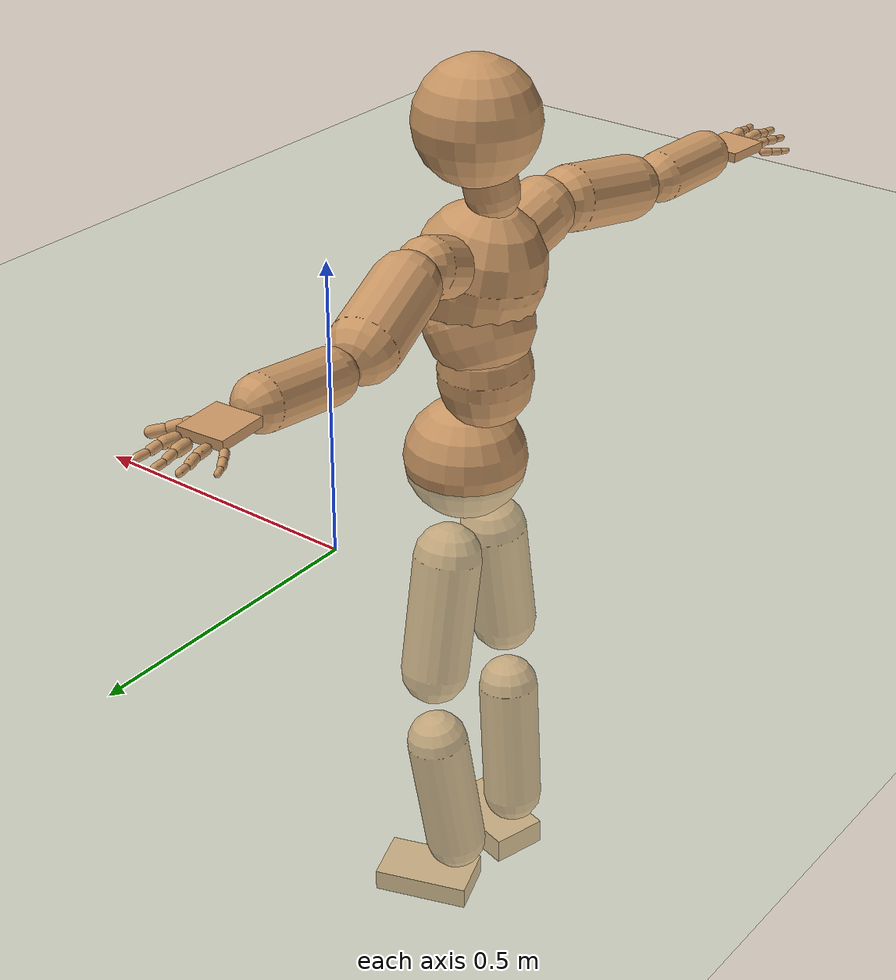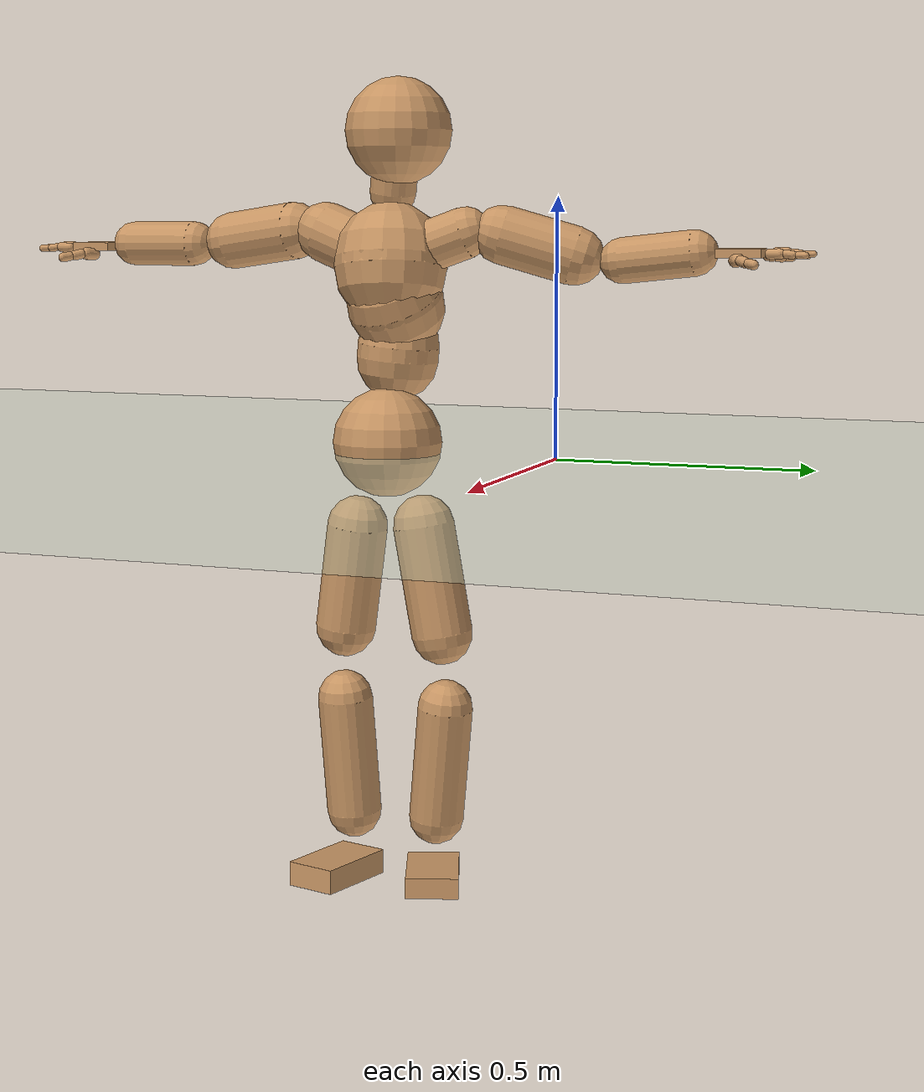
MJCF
<mujoco model="humanoid">
  <compiler coordinate="local" angle="radian"/>
  <default>
    <joint damping="0.0" armature="0.01" stiffness="0.0" limited="true"/>
    <geom conaffinity="1" condim="3" contype="7" margin="0.001" rgba="0.8 0.6 .4 1"/>
  </default>
  <asset>
    <texture type="skybox" builtin="gradient" rgb1=".4 .5 .6" rgb2="0 0 0" width="100" height="100"/>
    <texture builtin="flat" height="1278" mark="cross" markrgb="1 1 1" name="texgeom" random="0.01" rgb1="0.8 0.6 0.4" rgb2="0.8 0.6 0.4" type="cube" width="127"/>
    <texture builtin="checker" height="100" name="texplane" rgb1="0 0 0" rgb2="0.8 0.8 0.8" type="2d" width="100"/>
    <material name="MatPlane" reflectance="0.5" shininess="1" specular="1" texrepeat="60 60" texture="texplane"/>
    <material name="geom" texture="texgeom" texuniform="true"/>
  </asset>
  <worldbody>
    <light cutoff="100" diffuse="1 1 1" dir="-0 0 -1.3" directional="true" exponent="1" pos="0 0 1.3" specular=".1 .1 .1"/>
    <geom conaffinity="1" condim="3" name="floor" pos="0 0 0" rgba="0.8 0.9 0.8 1" size="100 100 .2" type="plane" material="MatPlane"/>
    <body name="Pelvis" pos="0.0016 -0.348 0.0195">
      <freejoint name="Pelvis"/>
      <geom type="sphere" contype="1" conaffinity="1" density="500" size="0.1084" pos="0.0000 0.0000 0.0000" name="Pelvis"/>
      <body name="L_Hip" pos="-0.0154 0.0574 -0.0916">
        <joint name="L_Hip_x" type="hinge" pos="0 0 0" axis="1 0 0" stiffness="800" damping="80" armature="0.02" range="-180.0000 180.0000"/>
        <joint name="L_Hip_y" type="hinge" pos="0 0 0" axis="0 1 0" stiffness="800" damping="80" armature="0.02" range="-180.0000 180.0000"/>
        <joint name="L_Hip_z" type="hinge" pos="0 0 0" axis="0 0 1" stiffness="800" damping="80" armature="0.02" range="-180.0000 180.0000"/>
        <geom type="capsule" contype="1" conaffinity="1" density="500" fromto="-0.0005 0.0129 -0.0727 -0.0020 0.0518 -0.2906" size="0.0608" name="L_Hip"/>
        <body name="L_Knee" pos="-0.0025 0.0647 -0.3633">
          <joint name="L_Knee_x" type="hinge" pos="0 0 0" axis="1 0 0" stiffness="800" damping="80" armature="0.02" range="-180.0000 180.0000"/>
          <joint name="L_Knee_y" type="hinge" pos="0 0 0" axis="0 1 0" stiffness="800" damping="80" armature="0.02" range="-180.0000 180.0000"/>
          <joint name="L_Knee_z" type="hinge" pos="0 0 0" axis="0 0 1" stiffness="800" damping="80" armature="0.02" range="-180.0000 180.0000"/>
          <geom type="capsule" contype="1" conaffinity="1" density="500" fromto="-0.0076 -0.0091 -0.0780 -0.0303 -0.0365 -0.3121" size="0.0554" name="L_Knee"/>
          <body name="L_Ankle" pos="-0.0378 -0.0457 -0.3902">
            <joint name="L_Ankle_x" type="hinge" pos="0 0 0" axis="1 0 0" stiffness="800" damping="80" armature="0.02" range="-180.0000 180.0000"/>
            <joint name="L_Ankle_y" type="hinge" pos="0 0 0" axis="0 1 0" stiffness="800" damping="80" armature="0.02" range="-180.0000 180.0000"/>
            <joint name="L_Ankle_z" type="hinge" pos="0 0 0" axis="0 0 1" stiffness="800" damping="80" armature="0.02" range="-180.0000 180.0000"/>
            <geom type="box" contype="1" conaffinity="1" density="500" pos="0.0630 0.0222 -0.0275" size="0.088 0.0524 0.0206" quat="0.9857 0.0000 0.0000 0.1688" name="L_Ankle"/>
            <body name="L_Toe" pos="0.126 0.0445 -0.055">
              <joint name="L_Toe_x" type="hinge" pos="0 0 0" axis="1 0 0" stiffness="500" damping="50" armature="0.02" range="-180.0000 180.0000"/>
              <joint name="L_Toe_y" type="hinge" pos="0 0 0" axis="0 1 0" stiffness="500" damping="50" armature="0.02" range="-180.0000 180.0000"/>
              <joint name="L_Toe_z" type="hinge" pos="0 0 0" axis="0 0 1" stiffness="500" damping="50" armature="0.02" range="-180.0000 180.0000"/>
              <geom type="box" contype="1" conaffinity="1" density="500" pos="0.0000 0.0000 0.0288" size="0.001 0.0025 0.0011" quat="0.9849 0.0000 0.0000 0.1732" name="L_Toe"/>
            </body>
          </body>
        </body>
      </body>
      <body name="R_Hip" pos="-0.0082 -0.0594 -0.1028">
        <joint name="R_Hip_x" type="hinge" pos="0 0 0" axis="1 0 0" stiffness="800" damping="80" armature="0.02" range="-180.0000 180.0000"/>
        <joint name="R_Hip_y" type="hinge" pos="0 0 0" axis="0 1 0" stiffness="800" damping="80" armature="0.02" range="-180.0000 180.0000"/>
        <joint name="R_Hip_z" type="hinge" pos="0 0 0" axis="0 0 1" stiffness="800" damping="80" armature="0.02" range="-180.0000 180.0000"/>
        <geom type="capsule" contype="1" conaffinity="1" density="500" fromto="-0.0022 -0.0097 -0.0694 -0.0087 -0.0387 -0.2775" size="0.0607" name="R_Hip"/>
        <body name="R_Knee" pos="-0.0108 -0.0483 -0.3468">
          <joint name="R_Knee_x" type="hinge" pos="0 0 0" axis="1 0 0" stiffness="800" damping="80" armature="0.02" range="-180.0000 180.0000"/>
          <joint name="R_Knee_y" type="hinge" pos="0 0 0" axis="0 1 0" stiffness="800" damping="80" armature="0.02" range="-180.0000 180.0000"/>
          <joint name="R_Knee_z" type="hinge" pos="0 0 0" axis="0 0 1" stiffness="800" damping="80" armature="0.02" range="-180.0000 180.0000"/>
          <geom type="capsule" contype="1" conaffinity="1" density="500" fromto="-0.0074 0.0033 -0.0805 -0.0296 0.0130 -0.3218" size="0.0554" name="R_Knee"/>
          <body name="R_Ankle" pos="-0.037 0.0163 -0.4023">
            <joint name="R_Ankle_x" type="hinge" pos="0 0 0" axis="1 0 0" stiffness="800" damping="80" armature="0.02" range="-180.0000 180.0000"/>
            <joint name="R_Ankle_y" type="hinge" pos="0 0 0" axis="0 1 0" stiffness="800" damping="80" armature="0.02" range="-180.0000 180.0000"/>
            <joint name="R_Ankle_z" type="hinge" pos="0 0 0" axis="0 0 1" stiffness="800" damping="80" armature="0.02" range="-180.0000 180.0000"/>
            <geom type="box" contype="1" conaffinity="1" density="500" pos="0.0665 -0.0177 -0.0270" size="0.088 0.0524 0.0245" quat="0.9915 0.0000 0.0000 -0.1299" name="R_Ankle"/>
            <body name="R_Toe" pos="0.133 -0.0354 -0.054">
              <joint name="R_Toe_x" type="hinge" pos="0 0 0" axis="1 0 0" stiffness="500" damping="50" armature="0.02" range="-180.0000 180.0000"/>
              <joint name="R_Toe_y" type="hinge" pos="0 0 0" axis="0 1 0" stiffness="500" damping="50" armature="0.02" range="-180.0000 180.0000"/>
              <joint name="R_Toe_z" type="hinge" pos="0 0 0" axis="0 0 1" stiffness="500" damping="50" armature="0.02" range="-180.0000 180.0000"/>
              <geom type="box" contype="1" conaffinity="1" density="500" pos="0.0000 0.0000 0.0243" size="0.001 0.0025 0.0011" quat="0.9926 0.0000 0.0000 -0.1211" name="R_Toe"/>
            </body>
          </body>
        </body>
      </body>
      <body name="Torso" pos="-0.0443 -0.0013 0.1054">
        <joint name="Torso_x" type="hinge" pos="0 0 0" axis="1 0 0" stiffness="1000" damping="100" armature="0.02" range="-180.0000 180.0000"/>
        <joint name="Torso_y" type="hinge" pos="0 0 0" axis="0 1 0" stiffness="1000" damping="100" armature="0.02" range="-180.0000 180.0000"/>
        <joint name="Torso_z" type="hinge" pos="0 0 0" axis="0 0 1" stiffness="1000" damping="100" armature="0.02" range="-180.0000 180.0000"/>
        <geom type="capsule" contype="1" conaffinity="1" density="500" fromto="0.0003 0.0080 0.0837 0.0002 0.0053 0.0558" size="0.0814" name="Torso"/>
        <body name="Spine" pos="0.0004 0.0133 0.1395">
          <joint name="Spine_x" type="hinge" pos="0 0 0" axis="1 0 0" stiffness="1000" damping="100" armature="0.02" range="-180.0000 180.0000"/>
          <joint name="Spine_y" type="hinge" pos="0 0 0" axis="0 1 0" stiffness="1000" damping="100" armature="0.02" range="-180.0000 180.0000"/>
          <joint name="Spine_z" type="hinge" pos="0 0 0" axis="0 0 1" stiffness="1000" damping="100" armature="0.02" range="-180.0000 180.0000"/>
          <geom type="capsule" contype="1" conaffinity="1" density="500" fromto="0.0175 -0.0064 0.0328 0.0117 -0.0043 0.0219" size="0.0963" name="Spine"/>
          <body name="Chest" pos="0.0292 -0.0107 0.0547">
            <joint name="Chest_x" type="hinge" pos="0 0 0" axis="1 0 0" stiffness="1000" damping="100" armature="0.02" range="-180.0000 180.0000"/>
            <joint name="Chest_y" type="hinge" pos="0 0 0" axis="0 1 0" stiffness="1000" damping="100" armature="0.02" range="-180.0000 180.0000"/>
            <joint name="Chest_z" type="hinge" pos="0 0 0" axis="0 0 1" stiffness="1000" damping="100" armature="0.02" range="-180.0000 180.0000"/>
            <geom type="capsule" contype="1" conaffinity="1" density="500" fromto="-0.0111 -0.0038 0.0610 -0.0074 -0.0026 0.0406" size="0.1119" name="Chest"/>
            <body name="Neck" pos="-0.0354 -0.0117 0.159">
              <joint name="Neck_x" type="hinge" pos="0 0 0" axis="1 0 0" stiffness="500" damping="50" armature="0.02" range="-180.0000 180.0000"/>
              <joint name="Neck_y" type="hinge" pos="0 0 0" axis="0 1 0" stiffness="500" damping="50" armature="0.02" range="-180.0000 180.0000"/>
              <joint name="Neck_z" type="hinge" pos="0 0 0" axis="0 0 1" stiffness="500" damping="50" armature="0.02" range="-180.0000 180.0000"/>
              <geom type="capsule" contype="1" conaffinity="1" density="500" fromto="0.0045 0.0048 0.0301 0.0181 0.0192 0.1202" size="0.0456" name="Neck"/>
              <body name="Head" pos="0.0226 0.024 0.1503">
                <joint name="Head_x" type="hinge" pos="0 0 0" axis="1 0 0" stiffness="500" damping="50" armature="0.02" range="-180.0000 180.0000"/>
                <joint name="Head_y" type="hinge" pos="0 0 0" axis="0 1 0" stiffness="500" damping="50" armature="0.02" range="-180.0000 180.0000"/>
                <joint name="Head_z" type="hinge" pos="0 0 0" axis="0 0 1" stiffness="500" damping="50" armature="0.02" range="-180.0000 180.0000"/>
                <geom type="sphere" contype="1" conaffinity="1" density="500" size="0.1050" pos="0.0000 0.0000 0.0000" name="Head"/>
              </body>
            </body>
            <body name="L_Thorax" pos="-0.0089 0.0411 0.0724">
              <joint name="L_Thorax_x" type="hinge" pos="0 0 0" axis="1 0 0" stiffness="500" damping="50" armature="0.02" range="-180.0000 180.0000"/>
              <joint name="L_Thorax_y" type="hinge" pos="0 0 0" axis="0 1 0" stiffness="500" damping="50" armature="0.02" range="-180.0000 180.0000"/>
              <joint name="L_Thorax_z" type="hinge" pos="0 0 0" axis="0 0 1" stiffness="500" damping="50" armature="0.02" range="-180.0000 180.0000"/>
              <geom type="capsule" contype="1" conaffinity="1" density="500" fromto="-0.0030 0.0268 0.0099 -0.0120 0.1074 0.0395" size="0.051" name="L_Thorax"/>
              <body name="L_Shoulder" pos="-0.015 0.1342 0.0494">
                <joint name="L_Shoulder_x" type="hinge" pos="0 0 0" axis="1 0 0" stiffness="500" damping="50" armature="0.02" range="-180.0000 180.0000"/>
                <joint name="L_Shoulder_y" type="hinge" pos="0 0 0" axis="0 1 0" stiffness="500" damping="50" armature="0.02" range="-180.0000 180.0000"/>
                <joint name="L_Shoulder_z" type="hinge" pos="0 0 0" axis="0 0 1" stiffness="500" damping="50" armature="0.02" range="-180.0000 180.0000"/>
                <geom type="capsule" contype="1" conaffinity="1" density="500" fromto="-0.0103 0.0453 -0.0134 -0.0413 0.1812 -0.0537" size="0.0579" name="L_Shoulder"/>
                <body name="L_Elbow" pos="-0.0517 0.2264 -0.0672">
                  <joint name="L_Elbow_x" type="hinge" pos="0 0 0" axis="1 0 0" stiffness="500" damping="50" armature="0.02" range="-720.0000 720.0000"/>
                  <joint name="L_Elbow_y" type="hinge" pos="0 0 0" axis="0 1 0" stiffness="500" damping="50" armature="0.02" range="-720.0000 720.0000"/>
                  <joint name="L_Elbow_z" type="hinge" pos="0 0 0" axis="0 0 1" stiffness="500" damping="50" armature="0.02" range="-720.0000 720.0000"/>
                  <geom type="capsule" contype="1" conaffinity="1" density="500" fromto="0.0005 0.0475 0.0053 0.0019 0.1902 0.0211" size="0.0444" name="L_Elbow"/>
                  <body name="L_Wrist" pos="0.0024 0.2377 0.0263">
                    <joint name="L_Wrist_x" type="hinge" pos="0 0 0" axis="1 0 0" stiffness="300" damping="30" armature="0.02" range="-180.0000 180.0000"/>
                    <joint name="L_Wrist_y" type="hinge" pos="0 0 0" axis="0 1 0" stiffness="300" damping="30" armature="0.02" range="-180.0000 180.0000"/>
                    <joint name="L_Wrist_z" type="hinge" pos="0 0 0" axis="0 0 1" stiffness="300" damping="30" armature="0.02" range="-180.0000 180.0000"/>
                    <geom type="box" contype="1" conaffinity="1" density="500" pos="-0.0029 0.0396 -0.0048" size="0.0431 0.0403 0.0083" quat="0.7323 0.0000 0.0000 -0.6810" name="L_Wrist"/>
                    <body name="L_Index1" pos="0.022 0.094 -0.0062">
                      <joint name="L_Index1_x" type="hinge" pos="0 0 0" axis="1 0 0" stiffness="100" damping="10" armature="0.02" range="-180.0000 180.0000"/>
                      <joint name="L_Index1_y" type="hinge" pos="0 0 0" axis="0 1 0" stiffness="100" damping="10" armature="0.02" range="-180.0000 180.0000"/>
                      <joint name="L_Index1_z" type="hinge" pos="0 0 0" axis="0 0 1" stiffness="100" damping="10" armature="0.02" range="-180.0000 180.0000"/>
                      <geom type="capsule" contype="1" conaffinity="1" density="500" fromto="0.0008 0.0063 0.0004 0.0031 0.0253 0.0015" size="0.01" name="L_Index1"/>
                      <body name="L_Index2" pos="0.0039 0.0316 0.0019">
                        <joint name="L_Index2_x" type="hinge" pos="0 0 0" axis="1 0 0" stiffness="100" damping="10" armature="0.02" range="-180.0000 180.0000"/>
                        <joint name="L_Index2_y" type="hinge" pos="0 0 0" axis="0 1 0" stiffness="100" damping="10" armature="0.02" range="-180.0000 180.0000"/>
                        <joint name="L_Index2_z" type="hinge" pos="0 0 0" axis="0 0 1" stiffness="100" damping="10" armature="0.02" range="-180.0000 180.0000"/>
                        <geom type="capsule" contype="1" conaffinity="1" density="500" fromto="-0.0001 0.0044 -0.0005 -0.0002 0.0177 -0.0021" size="0.0079" name="L_Index2"/>
                        <body name="L_Index3" pos="-0.0003 0.0222 -0.0026">
                          <joint name="L_Index3_x" type="hinge" pos="0 0 0" axis="1 0 0" stiffness="100" damping="10" armature="0.02" range="-180.0000 180.0000"/>
                          <joint name="L_Index3_y" type="hinge" pos="0 0 0" axis="0 1 0" stiffness="100" damping="10" armature="0.02" range="-180.0000 180.0000"/>
                          <joint name="L_Index3_z" type="hinge" pos="0 0 0" axis="0 0 1" stiffness="100" damping="10" armature="0.02" range="-180.0000 180.0000"/>
                          <geom type="capsule" contype="1" conaffinity="1" density="500" fromto="0.0003 0.0048 -0.0001 0.0014 0.0193 -0.0005" size="0.0067" name="L_Index3"/>
                        </body>
                      </body>
                    </body>
                    <body name="L_Middle1" pos="-0.0034 0.1016 -0.0034">
                      <joint name="L_Middle1_x" type="hinge" pos="0 0 0" axis="1 0 0" stiffness="100" damping="10" armature="0.02" range="-180.0000 180.0000"/>
                      <joint name="L_Middle1_y" type="hinge" pos="0 0 0" axis="0 1 0" stiffness="100" damping="10" armature="0.02" range="-180.0000 180.0000"/>
                      <joint name="L_Middle1_z" type="hinge" pos="0 0 0" axis="0 0 1" stiffness="100" damping="10" armature="0.02" range="-180.0000 180.0000"/>
                      <geom type="capsule" contype="1" conaffinity="1" density="500" fromto="-0.0009 0.0061 0.0001 -0.0035 0.0242 0.0005" size="0.0101" name="L_Middle1"/>
                      <body name="L_Middle2" pos="-0.0043 0.0303 0.0007">
                        <joint name="L_Middle2_x" type="hinge" pos="0 0 0" axis="1 0 0" stiffness="100" damping="10" armature="0.02" range="-180.0000 180.0000"/>
                        <joint name="L_Middle2_y" type="hinge" pos="0 0 0" axis="0 1 0" stiffness="100" damping="10" armature="0.02" range="-180.0000 180.0000"/>
                        <joint name="L_Middle2_z" type="hinge" pos="0 0 0" axis="0 0 1" stiffness="100" damping="10" armature="0.02" range="-180.0000 180.0000"/>
                        <geom type="capsule" contype="1" conaffinity="1" density="500" fromto="-0.0009 0.0046 -0.0005 -0.0035 0.0184 -0.0020" size="0.0073" name="L_Middle2"/>
                        <body name="L_Middle3" pos="-0.0044 0.023 -0.0025">
                          <joint name="L_Middle3_x" type="hinge" pos="0 0 0" axis="1 0 0" stiffness="100" damping="10" armature="0.02" range="-180.0000 180.0000"/>
                          <joint name="L_Middle3_y" type="hinge" pos="0 0 0" axis="0 1 0" stiffness="100" damping="10" armature="0.02" range="-180.0000 180.0000"/>
                          <joint name="L_Middle3_z" type="hinge" pos="0 0 0" axis="0 0 1" stiffness="100" damping="10" armature="0.02" range="-180.0000 180.0000"/>
                          <geom type="capsule" contype="1" conaffinity="1" density="500" fromto="-0.0005 0.0050 -0.0001 -0.0019 0.0200 -0.0004" size="0.0063" name="L_Middle3"/>
                        </body>
                      </body>
                    </body>
                    <body name="L_Pinky1" pos="-0.0467 0.0767 -0.0129">
                      <joint name="L_Pinky1_x" type="hinge" pos="0 0 0" axis="1 0 0" stiffness="100" damping="10" armature="0.02" range="-180.0000 180.0000"/>
                      <joint name="L_Pinky1_y" type="hinge" pos="0 0 0" axis="0 1 0" stiffness="100" damping="10" armature="0.02" range="-180.0000 180.0000"/>
                      <joint name="L_Pinky1_z" type="hinge" pos="0 0 0" axis="0 0 1" stiffness="100" damping="10" armature="0.02" range="-180.0000 180.0000"/>
                      <geom type="capsule" contype="1" conaffinity="1" density="500" fromto="-0.0024 0.0032 -0.0003 -0.0097 0.0130 -0.0013" size="0.0071" name="L_Pinky1"/>
                      <body name="L_Pinky2" pos="-0.0121 0.0162 -0.0016">
                        <joint name="L_Pinky2_x" type="hinge" pos="0 0 0" axis="1 0 0" stiffness="100" damping="10" armature="0.02" range="-180.0000 180.0000"/>
                        <joint name="L_Pinky2_y" type="hinge" pos="0 0 0" axis="0 1 0" stiffness="100" damping="10" armature="0.02" range="-180.0000 180.0000"/>
                        <joint name="L_Pinky2_z" type="hinge" pos="0 0 0" axis="0 0 1" stiffness="100" damping="10" armature="0.02" range="-180.0000 180.0000"/>
                        <geom type="capsule" contype="1" conaffinity="1" density="500" fromto="-0.0022 0.0032 -0.0004 -0.0087 0.0128 -0.0016" size="0.0068" name="L_Pinky2"/>
                        <body name="L_Pinky3" pos="-0.0109 0.016 -0.002">
                          <joint name="L_Pinky3_x" type="hinge" pos="0 0 0" axis="1 0 0" stiffness="100" damping="10" armature="0.02" range="-180.0000 180.0000"/>
                          <joint name="L_Pinky3_y" type="hinge" pos="0 0 0" axis="0 1 0" stiffness="100" damping="10" armature="0.02" range="-180.0000 180.0000"/>
                          <joint name="L_Pinky3_z" type="hinge" pos="0 0 0" axis="0 0 1" stiffness="100" damping="10" armature="0.02" range="-180.0000 180.0000"/>
                          <geom type="capsule" contype="1" conaffinity="1" density="500" fromto="-0.0018 0.0036 -0.0000 -0.0071 0.0144 -0.0000" size="0.005" name="L_Pinky3"/>
                        </body>
                      </body>
                    </body>
                    <body name="L_Ring1" pos="-0.0289 0.0898 -0.0068">
                      <joint name="L_Ring1_x" type="hinge" pos="0 0 0" axis="1 0 0" stiffness="100" damping="10" armature="0.02" range="-180.0000 180.0000"/>
                      <joint name="L_Ring1_y" type="hinge" pos="0 0 0" axis="0 1 0" stiffness="100" damping="10" armature="0.02" range="-180.0000 180.0000"/>
                      <joint name="L_Ring1_z" type="hinge" pos="0 0 0" axis="0 0 1" stiffness="100" damping="10" armature="0.02" range="-180.0000 180.0000"/>
                      <geom type="capsule" contype="1" conaffinity="1" density="500" fromto="-0.0010 0.0056 0.0001 -0.0039 0.0224 0.0004" size="0.0085" name="L_Ring1"/>
                      <body name="L_Ring2" pos="-0.0049 0.0281 0.0005">
                        <joint name="L_Ring2_x" type="hinge" pos="0 0 0" axis="1 0 0" stiffness="100" damping="10" armature="0.02" range="-180.0000 180.0000"/>
                        <joint name="L_Ring2_y" type="hinge" pos="0 0 0" axis="0 1 0" stiffness="100" damping="10" armature="0.02" range="-180.0000 180.0000"/>
                        <joint name="L_Ring2_z" type="hinge" pos="0 0 0" axis="0 0 1" stiffness="100" damping="10" armature="0.02" range="-180.0000 180.0000"/>
                        <geom type="capsule" contype="1" conaffinity="1" density="500" fromto="-0.0013 0.0046 -0.0005 -0.0052 0.0182 -0.0021" size="0.0078" name="L_Ring2"/>
                        <body name="L_Ring3" pos="-0.0066 0.0228 -0.0026">
                          <joint name="L_Ring3_x" type="hinge" pos="0 0 0" axis="1 0 0" stiffness="100" damping="10" armature="0.02" range="-180.0000 180.0000"/>
                          <joint name="L_Ring3_y" type="hinge" pos="0 0 0" axis="0 1 0" stiffness="100" damping="10" armature="0.02" range="-180.0000 180.0000"/>
                          <joint name="L_Ring3_z" type="hinge" pos="0 0 0" axis="0 0 1" stiffness="100" damping="10" armature="0.02" range="-180.0000 180.0000"/>
                          <geom type="capsule" contype="1" conaffinity="1" density="500" fromto="-0.0009 0.0050 -0.0001 -0.0036 0.0198 -0.0005" size="0.0059" name="L_Ring3"/>
                        </body>
                      </body>
                    </body>
                    <body name="L_Thumb1" pos="0.0283 0.0342 -0.0187">
                      <joint name="L_Thumb1_x" type="hinge" pos="0 0 0" axis="1 0 0" stiffness="100" damping="10" armature="0.02" range="-180.0000 180.0000"/>
                      <joint name="L_Thumb1_y" type="hinge" pos="0 0 0" axis="0 1 0" stiffness="100" damping="10" armature="0.02" range="-180.0000 180.0000"/>
                      <joint name="L_Thumb1_z" type="hinge" pos="0 0 0" axis="0 0 1" stiffness="100" damping="10" armature="0.02" range="-180.0000 180.0000"/>
                      <geom type="capsule" contype="1" conaffinity="1" density="500" fromto="0.0054 0.0030 0.0005 0.0214 0.0118 0.0018" size="0.0126" name="L_Thumb1"/>
                      <body name="L_Thumb2" pos="0.0268 0.0148 0.0023">
                        <joint name="L_Thumb2_x" type="hinge" pos="0 0 0" axis="1 0 0" stiffness="100" damping="10" armature="0.02" range="-180.0000 180.0000"/>
                        <joint name="L_Thumb2_y" type="hinge" pos="0 0 0" axis="0 1 0" stiffness="100" damping="10" armature="0.02" range="-180.0000 180.0000"/>
                        <joint name="L_Thumb2_z" type="hinge" pos="0 0 0" axis="0 0 1" stiffness="100" damping="10" armature="0.02" range="-180.0000 180.0000"/>
                        <geom type="capsule" contype="1" conaffinity="1" density="500" fromto="0.0033 0.0037 -0.0010 0.0132 0.0148 -0.0041" size="0.0101" name="L_Thumb2"/>
                        <body name="L_Thumb3" pos="0.0166 0.0184 -0.0051">
                          <joint name="L_Thumb3_x" type="hinge" pos="0 0 0" axis="1 0 0" stiffness="100" damping="10" armature="0.02" range="-180.0000 180.0000"/>
                          <joint name="L_Thumb3_y" type="hinge" pos="0 0 0" axis="0 1 0" stiffness="100" damping="10" armature="0.02" range="-180.0000 180.0000"/>
                          <joint name="L_Thumb3_z" type="hinge" pos="0 0 0" axis="0 0 1" stiffness="100" damping="10" armature="0.02" range="-180.0000 180.0000"/>
                          <geom type="capsule" contype="1" conaffinity="1" density="500" fromto="0.0037 0.0041 -0.0006 0.0148 0.0164 -0.0025" size="0.0092" name="L_Thumb3"/>
                        </body>
                      </body>
                    </body>
                  </body>
                </body>
              </body>
            </body>
            <body name="R_Thorax" pos="-0.0113 -0.0487 0.0735">
              <joint name="R_Thorax_x" type="hinge" pos="0 0 0" axis="1 0 0" stiffness="500" damping="50" armature="0.02" range="-180.0000 180.0000"/>
              <joint name="R_Thorax_y" type="hinge" pos="0 0 0" axis="0 1 0" stiffness="500" damping="50" armature="0.02" range="-180.0000 180.0000"/>
              <joint name="R_Thorax_z" type="hinge" pos="0 0 0" axis="0 0 1" stiffness="500" damping="50" armature="0.02" range="-180.0000 180.0000"/>
              <geom type="capsule" contype="1" conaffinity="1" density="500" fromto="-0.0034 -0.0247 0.0095 -0.0136 -0.0987 0.0379" size="0.0601" name="R_Thorax"/>
              <body name="R_Shoulder" pos="-0.017 -0.1233 0.0474">
                <joint name="R_Shoulder_x" type="hinge" pos="0 0 0" axis="1 0 0" stiffness="500" damping="50" armature="0.02" range="-180.0000 180.0000"/>
                <joint name="R_Shoulder_y" type="hinge" pos="0 0 0" axis="0 1 0" stiffness="500" damping="50" armature="0.02" range="-180.0000 180.0000"/>
                <joint name="R_Shoulder_z" type="hinge" pos="0 0 0" axis="0 0 1" stiffness="500" damping="50" armature="0.02" range="-180.0000 180.0000"/>
                <geom type="capsule" contype="1" conaffinity="1" density="500" fromto="-0.0067 -0.0484 -0.0069 -0.0268 -0.1936 -0.0278" size="0.0574" name="R_Shoulder"/>
                <body name="R_Elbow" pos="-0.0335 -0.242 -0.0347">
                  <joint name="R_Elbow_x" type="hinge" pos="0 0 0" axis="1 0 0" stiffness="500" damping="50" armature="0.02" range="-720.0000 720.0000"/>
                  <joint name="R_Elbow_y" type="hinge" pos="0 0 0" axis="0 1 0" stiffness="500" damping="50" armature="0.02" range="-720.0000 720.0000"/>
                  <joint name="R_Elbow_z" type="hinge" pos="0 0 0" axis="0 0 1" stiffness="500" damping="50" armature="0.02" range="-720.0000 720.0000"/>
                  <geom type="capsule" contype="1" conaffinity="1" density="500" fromto="-0.0020 -0.0464 -0.0003 -0.0081 -0.1855 -0.0011" size="0.0453" name="R_Elbow"/>
                  <body name="R_Wrist" pos="-0.0101 -0.2319 -0.0014">
                    <joint name="R_Wrist_x" type="hinge" pos="0 0 0" axis="1 0 0" stiffness="300" damping="30" armature="0.02" range="-180.0000 180.0000"/>
                    <joint name="R_Wrist_y" type="hinge" pos="0 0 0" axis="0 1 0" stiffness="300" damping="30" armature="0.02" range="-180.0000 180.0000"/>
                    <joint name="R_Wrist_z" type="hinge" pos="0 0 0" axis="0 0 1" stiffness="300" damping="30" armature="0.02" range="-180.0000 180.0000"/>
                    <geom type="box" contype="1" conaffinity="1" density="500" pos="-0.0034 -0.0394 -0.0067" size="0.0431 0.0411 0.0085" quat="0.7370 0.0000 0.0000 0.6759" name="R_Wrist"/>
                    <body name="R_Index1" pos="0.0209 -0.0935 -0.0101">
                      <joint name="R_Index1_x" type="hinge" pos="0 0 0" axis="1 0 0" stiffness="100" damping="10" armature="0.02" range="-180.0000 180.0000"/>
                      <joint name="R_Index1_y" type="hinge" pos="0 0 0" axis="0 1 0" stiffness="100" damping="10" armature="0.02" range="-180.0000 180.0000"/>
                      <joint name="R_Index1_z" type="hinge" pos="0 0 0" axis="0 0 1" stiffness="100" damping="10" armature="0.02" range="-180.0000 180.0000"/>
                      <geom type="capsule" contype="1" conaffinity="1" density="500" fromto="0.0008 -0.0063 0.0004 0.0031 -0.0253 0.0015" size="0.01" name="R_Index1"/>
                      <body name="R_Index2" pos="0.0039 -0.0316 0.0019">
                        <joint name="R_Index2_x" type="hinge" pos="0 0 0" axis="1 0 0" stiffness="100" damping="10" armature="0.02" range="-180.0000 180.0000"/>
                        <joint name="R_Index2_y" type="hinge" pos="0 0 0" axis="0 1 0" stiffness="100" damping="10" armature="0.02" range="-180.0000 180.0000"/>
                        <joint name="R_Index2_z" type="hinge" pos="0 0 0" axis="0 0 1" stiffness="100" damping="10" armature="0.02" range="-180.0000 180.0000"/>
                        <geom type="capsule" contype="1" conaffinity="1" density="500" fromto="-0.0001 -0.0044 -0.0005 -0.0003 -0.0177 -0.0021" size="0.0079" name="R_Index2"/>
                        <body name="R_Index3" pos="-0.0003 -0.0222 -0.0026">
                          <joint name="R_Index3_x" type="hinge" pos="0 0 0" axis="1 0 0" stiffness="100" damping="10" armature="0.02" range="-180.0000 180.0000"/>
                          <joint name="R_Index3_y" type="hinge" pos="0 0 0" axis="0 1 0" stiffness="100" damping="10" armature="0.02" range="-180.0000 180.0000"/>
                          <joint name="R_Index3_z" type="hinge" pos="0 0 0" axis="0 0 1" stiffness="100" damping="10" armature="0.02" range="-180.0000 180.0000"/>
                          <geom type="capsule" contype="1" conaffinity="1" density="500" fromto="0.0003 -0.0040 -0.0001 0.0013 -0.0161 -0.0005" size="0.007" name="R_Index3"/>
                        </body>
                      </body>
                    </body>
                    <body name="R_Middle1" pos="-0.0045 -0.1011 -0.0072">
                      <joint name="R_Middle1_x" type="hinge" pos="0 0 0" axis="1 0 0" stiffness="100" damping="10" armature="0.02" range="-180.0000 180.0000"/>
                      <joint name="R_Middle1_y" type="hinge" pos="0 0 0" axis="0 1 0" stiffness="100" damping="10" armature="0.02" range="-180.0000 180.0000"/>
                      <joint name="R_Middle1_z" type="hinge" pos="0 0 0" axis="0 0 1" stiffness="100" damping="10" armature="0.02" range="-180.0000 180.0000"/>
                      <geom type="capsule" contype="1" conaffinity="1" density="500" fromto="-0.0009 -0.0061 0.0001 -0.0035 -0.0242 0.0005" size="0.0101" name="R_Middle1"/>
                      <body name="R_Middle2" pos="-0.0043 -0.0303 0.0007">
                        <joint name="R_Middle2_x" type="hinge" pos="0 0 0" axis="1 0 0" stiffness="100" damping="10" armature="0.02" range="-180.0000 180.0000"/>
                        <joint name="R_Middle2_y" type="hinge" pos="0 0 0" axis="0 1 0" stiffness="100" damping="10" armature="0.02" range="-180.0000 180.0000"/>
                        <joint name="R_Middle2_z" type="hinge" pos="0 0 0" axis="0 0 1" stiffness="100" damping="10" armature="0.02" range="-180.0000 180.0000"/>
                        <geom type="capsule" contype="1" conaffinity="1" density="500" fromto="-0.0009 -0.0046 -0.0005 -0.0035 -0.0184 -0.0020" size="0.0073" name="R_Middle2"/>
                        <body name="R_Middle3" pos="-0.0044 -0.023 -0.0025">
                          <joint name="R_Middle3_x" type="hinge" pos="0 0 0" axis="1 0 0" stiffness="100" damping="10" armature="0.02" range="-180.0000 180.0000"/>
                          <joint name="R_Middle3_y" type="hinge" pos="0 0 0" axis="0 1 0" stiffness="100" damping="10" armature="0.02" range="-180.0000 180.0000"/>
                          <joint name="R_Middle3_z" type="hinge" pos="0 0 0" axis="0 0 1" stiffness="100" damping="10" armature="0.02" range="-180.0000 180.0000"/>
                          <geom type="capsule" contype="1" conaffinity="1" density="500" fromto="-0.0005 -0.0042 -0.0001 -0.0019 -0.0168 -0.0004" size="0.0066" name="R_Middle3"/>
                        </body>
                      </body>
                    </body>
                    <body name="R_Pinky1" pos="-0.0478 -0.0762 -0.0168">
                      <joint name="R_Pinky1_x" type="hinge" pos="0 0 0" axis="1 0 0" stiffness="100" damping="10" armature="0.02" range="-180.0000 180.0000"/>
                      <joint name="R_Pinky1_y" type="hinge" pos="0 0 0" axis="0 1 0" stiffness="100" damping="10" armature="0.02" range="-180.0000 180.0000"/>
                      <joint name="R_Pinky1_z" type="hinge" pos="0 0 0" axis="0 0 1" stiffness="100" damping="10" armature="0.02" range="-180.0000 180.0000"/>
                      <geom type="capsule" contype="1" conaffinity="1" density="500" fromto="-0.0024 -0.0032 -0.0003 -0.0097 -0.0130 -0.0013" size="0.0071" name="R_Pinky1"/>
                      <body name="R_Pinky2" pos="-0.0121 -0.0162 -0.0016">
                        <joint name="R_Pinky2_x" type="hinge" pos="0 0 0" axis="1 0 0" stiffness="100" damping="10" armature="0.02" range="-180.0000 180.0000"/>
                        <joint name="R_Pinky2_y" type="hinge" pos="0 0 0" axis="0 1 0" stiffness="100" damping="10" armature="0.02" range="-180.0000 180.0000"/>
                        <joint name="R_Pinky2_z" type="hinge" pos="0 0 0" axis="0 0 1" stiffness="100" damping="10" armature="0.02" range="-180.0000 180.0000"/>
                        <geom type="capsule" contype="1" conaffinity="1" density="500" fromto="-0.0022 -0.0032 -0.0004 -0.0087 -0.0128 -0.0016" size="0.0068" name="R_Pinky2"/>
                        <body name="R_Pinky3" pos="-0.0109 -0.016 -0.002">
                          <joint name="R_Pinky3_x" type="hinge" pos="0 0 0" axis="1 0 0" stiffness="100" damping="10" armature="0.02" range="-180.0000 180.0000"/>
                          <joint name="R_Pinky3_y" type="hinge" pos="0 0 0" axis="0 1 0" stiffness="100" damping="10" armature="0.02" range="-180.0000 180.0000"/>
                          <joint name="R_Pinky3_z" type="hinge" pos="0 0 0" axis="0 0 1" stiffness="100" damping="10" armature="0.02" range="-180.0000 180.0000"/>
                          <geom type="capsule" contype="1" conaffinity="1" density="500" fromto="-0.0018 -0.0028 -0.0000 -0.0071 -0.0112 -0.0000" size="0.0052" name="R_Pinky3"/>
                        </body>
                      </body>
                    </body>
                    <body name="R_Ring1" pos="-0.03 -0.0893 -0.0107">
                      <joint name="R_Ring1_x" type="hinge" pos="0 0 0" axis="1 0 0" stiffness="100" damping="10" armature="0.02" range="-180.0000 180.0000"/>
                      <joint name="R_Ring1_y" type="hinge" pos="0 0 0" axis="0 1 0" stiffness="100" damping="10" armature="0.02" range="-180.0000 180.0000"/>
                      <joint name="R_Ring1_z" type="hinge" pos="0 0 0" axis="0 0 1" stiffness="100" damping="10" armature="0.02" range="-180.0000 180.0000"/>
                      <geom type="capsule" contype="1" conaffinity="1" density="500" fromto="-0.0010 -0.0056 0.0001 -0.0039 -0.0224 0.0004" size="0.0086" name="R_Ring1"/>
                      <body name="R_Ring2" pos="-0.0049 -0.0281 0.0005">
                        <joint name="R_Ring2_x" type="hinge" pos="0 0 0" axis="1 0 0" stiffness="100" damping="10" armature="0.02" range="-180.0000 180.0000"/>
                        <joint name="R_Ring2_y" type="hinge" pos="0 0 0" axis="0 1 0" stiffness="100" damping="10" armature="0.02" range="-180.0000 180.0000"/>
                        <joint name="R_Ring2_z" type="hinge" pos="0 0 0" axis="0 0 1" stiffness="100" damping="10" armature="0.02" range="-180.0000 180.0000"/>
                        <geom type="capsule" contype="1" conaffinity="1" density="500" fromto="-0.0013 -0.0046 -0.0005 -0.0052 -0.0182 -0.0021" size="0.0078" name="R_Ring2"/>
                        <body name="R_Ring3" pos="-0.0066 -0.0228 -0.0026">
                          <joint name="R_Ring3_x" type="hinge" pos="0 0 0" axis="1 0 0" stiffness="100" damping="10" armature="0.02" range="-180.0000 180.0000"/>
                          <joint name="R_Ring3_y" type="hinge" pos="0 0 0" axis="0 1 0" stiffness="100" damping="10" armature="0.02" range="-180.0000 180.0000"/>
                          <joint name="R_Ring3_z" type="hinge" pos="0 0 0" axis="0 0 1" stiffness="100" damping="10" armature="0.02" range="-180.0000 180.0000"/>
                          <geom type="capsule" contype="1" conaffinity="1" density="500" fromto="-0.0009 -0.0042 -0.0001 -0.0036 -0.0166 -0.0005" size="0.0062" name="R_Ring3"/>
                        </body>
                      </body>
                    </body>
                    <body name="R_Thumb1" pos="0.0272 -0.0337 -0.0225">
                      <joint name="R_Thumb1_x" type="hinge" pos="0 0 0" axis="1 0 0" stiffness="100" damping="10" armature="0.02" range="-180.0000 180.0000"/>
                      <joint name="R_Thumb1_y" type="hinge" pos="0 0 0" axis="0 1 0" stiffness="100" damping="10" armature="0.02" range="-180.0000 180.0000"/>
                      <joint name="R_Thumb1_z" type="hinge" pos="0 0 0" axis="0 0 1" stiffness="100" damping="10" armature="0.02" range="-180.0000 180.0000"/>
                      <geom type="capsule" contype="1" conaffinity="1" density="500" fromto="0.0054 -0.0030 0.0005 0.0214 -0.0118 0.0018" size="0.0126" name="R_Thumb1"/>
                      <body name="R_Thumb2" pos="0.0268 -0.0148 0.0023">
                        <joint name="R_Thumb2_x" type="hinge" pos="0 0 0" axis="1 0 0" stiffness="100" damping="10" armature="0.02" range="-180.0000 180.0000"/>
                        <joint name="R_Thumb2_y" type="hinge" pos="0 0 0" axis="0 1 0" stiffness="100" damping="10" armature="0.02" range="-180.0000 180.0000"/>
                        <joint name="R_Thumb2_z" type="hinge" pos="0 0 0" axis="0 0 1" stiffness="100" damping="10" armature="0.02" range="-180.0000 180.0000"/>
                        <geom type="capsule" contype="1" conaffinity="1" density="500" fromto="0.0033 -0.0037 -0.0010 0.0132 -0.0148 -0.0041" size="0.0101" name="R_Thumb2"/>
                        <body name="R_Thumb3" pos="0.0166 -0.0184 -0.0051">
                          <joint name="R_Thumb3_x" type="hinge" pos="0 0 0" axis="1 0 0" stiffness="100" damping="10" armature="0.02" range="-180.0000 180.0000"/>
                          <joint name="R_Thumb3_y" type="hinge" pos="0 0 0" axis="0 1 0" stiffness="100" damping="10" armature="0.02" range="-180.0000 180.0000"/>
                          <joint name="R_Thumb3_z" type="hinge" pos="0 0 0" axis="0 0 1" stiffness="100" damping="10" armature="0.02" range="-180.0000 180.0000"/>
                          <geom type="capsule" contype="1" conaffinity="1" density="500" fromto="0.0037 -0.0033 -0.0006 0.0148 -0.0132 -0.0025" size="0.0095" name="R_Thumb3"/>
                        </body>
                      </body>
                    </body>
                  </body>
                </body>
              </body>
            </body>
          </body>
        </body>
      </body>
    </body>
  </worldbody>
  <actuator>
    <motor name="L_Hip_x" joint="L_Hip_x" gear="500"/>
    <motor name="L_Hip_y" joint="L_Hip_y" gear="500"/>
    <motor name="L_Hip_z" joint="L_Hip_z" gear="500"/>
    <motor name="L_Knee_x" joint="L_Knee_x" gear="500"/>
    <motor name="L_Knee_y" joint="L_Knee_y" gear="500"/>
    <motor name="L_Knee_z" joint="L_Knee_z" gear="500"/>
    <motor name="L_Ankle_x" joint="L_Ankle_x" gear="500"/>
    <motor name="L_Ankle_y" joint="L_Ankle_y" gear="500"/>
    <motor name="L_Ankle_z" joint="L_Ankle_z" gear="500"/>
    <motor name="L_Toe_x" joint="L_Toe_x" gear="500"/>
    <motor name="L_Toe_y" joint="L_Toe_y" gear="500"/>
    <motor name="L_Toe_z" joint="L_Toe_z" gear="500"/>
    <motor name="R_Hip_x" joint="R_Hip_x" gear="500"/>
    <motor name="R_Hip_y" joint="R_Hip_y" gear="500"/>
    <motor name="R_Hip_z" joint="R_Hip_z" gear="500"/>
    <motor name="R_Knee_x" joint="R_Knee_x" gear="500"/>
    <motor name="R_Knee_y" joint="R_Knee_y" gear="500"/>
    <motor name="R_Knee_z" joint="R_Knee_z" gear="500"/>
    <motor name="R_Ankle_x" joint="R_Ankle_x" gear="500"/>
    <motor name="R_Ankle_y" joint="R_Ankle_y" gear="500"/>
    <motor name="R_Ankle_z" joint="R_Ankle_z" gear="500"/>
    <motor name="R_Toe_x" joint="R_Toe_x" gear="500"/>
    <motor name="R_Toe_y" joint="R_Toe_y" gear="500"/>
    <motor name="R_Toe_z" joint="R_Toe_z" gear="500"/>
    <motor name="Torso_x" joint="Torso_x" gear="500"/>
    <motor name="Torso_y" joint="Torso_y" gear="500"/>
    <motor name="Torso_z" joint="Torso_z" gear="500"/>
    <motor name="Spine_x" joint="Spine_x" gear="500"/>
    <motor name="Spine_y" joint="Spine_y" gear="500"/>
    <motor name="Spine_z" joint="Spine_z" gear="500"/>
    <motor name="Chest_x" joint="Chest_x" gear="500"/>
    <motor name="Chest_y" joint="Chest_y" gear="500"/>
    <motor name="Chest_z" joint="Chest_z" gear="500"/>
    <motor name="Neck_x" joint="Neck_x" gear="500"/>
    <motor name="Neck_y" joint="Neck_y" gear="500"/>
    <motor name="Neck_z" joint="Neck_z" gear="500"/>
    <motor name="Head_x" joint="Head_x" gear="500"/>
    <motor name="Head_y" joint="Head_y" gear="500"/>
    <motor name="Head_z" joint="Head_z" gear="500"/>
    <motor name="L_Thorax_x" joint="L_Thorax_x" gear="500"/>
    <motor name="L_Thorax_y" joint="L_Thorax_y" gear="500"/>
    <motor name="L_Thorax_z" joint="L_Thorax_z" gear="500"/>
    <motor name="L_Shoulder_x" joint="L_Shoulder_x" gear="500"/>
    <motor name="L_Shoulder_y" joint="L_Shoulder_y" gear="500"/>
    <motor name="L_Shoulder_z" joint="L_Shoulder_z" gear="500"/>
    <motor name="L_Elbow_x" joint="L_Elbow_x" gear="500"/>
    <motor name="L_Elbow_y" joint="L_Elbow_y" gear="500"/>
    <motor name="L_Elbow_z" joint="L_Elbow_z" gear="500"/>
    <motor name="L_Wrist_x" joint="L_Wrist_x" gear="500"/>
    <motor name="L_Wrist_y" joint="L_Wrist_y" gear="500"/>
    <motor name="L_Wrist_z" joint="L_Wrist_z" gear="500"/>
    <motor name="L_Index1_x" joint="L_Index1_x" gear="500"/>
    <motor name="L_Index1_y" joint="L_Index1_y" gear="500"/>
    <motor name="L_Index1_z" joint="L_Index1_z" gear="500"/>
    <motor name="L_Index2_x" joint="L_Index2_x" gear="500"/>
    <motor name="L_Index2_y" joint="L_Index2_y" gear="500"/>
    <motor name="L_Index2_z" joint="L_Index2_z" gear="500"/>
    <motor name="L_Index3_x" joint="L_Index3_x" gear="500"/>
    <motor name="L_Index3_y" joint="L_Index3_y" gear="500"/>
    <motor name="L_Index3_z" joint="L_Index3_z" gear="500"/>
    <motor name="L_Middle1_x" joint="L_Middle1_x" gear="500"/>
    <motor name="L_Middle1_y" joint="L_Middle1_y" gear="500"/>
    <motor name="L_Middle1_z" joint="L_Middle1_z" gear="500"/>
    <motor name="L_Middle2_x" joint="L_Middle2_x" gear="500"/>
    <motor name="L_Middle2_y" joint="L_Middle2_y" gear="500"/>
    <motor name="L_Middle2_z" joint="L_Middle2_z" gear="500"/>
    <motor name="L_Middle3_x" joint="L_Middle3_x" gear="500"/>
    <motor name="L_Middle3_y" joint="L_Middle3_y" gear="500"/>
    <motor name="L_Middle3_z" joint="L_Middle3_z" gear="500"/>
    <motor name="L_Pinky1_x" joint="L_Pinky1_x" gear="500"/>
    <motor name="L_Pinky1_y" joint="L_Pinky1_y" gear="500"/>
    <motor name="L_Pinky1_z" joint="L_Pinky1_z" gear="500"/>
    <motor name="L_Pinky2_x" joint="L_Pinky2_x" gear="500"/>
    <motor name="L_Pinky2_y" joint="L_Pinky2_y" gear="500"/>
    <motor name="L_Pinky2_z" joint="L_Pinky2_z" gear="500"/>
    <motor name="L_Pinky3_x" joint="L_Pinky3_x" gear="500"/>
    <motor name="L_Pinky3_y" joint="L_Pinky3_y" gear="500"/>
    <motor name="L_Pinky3_z" joint="L_Pinky3_z" gear="500"/>
    <motor name="L_Ring1_x" joint="L_Ring1_x" gear="500"/>
    <motor name="L_Ring1_y" joint="L_Ring1_y" gear="500"/>
    <motor name="L_Ring1_z" joint="L_Ring1_z" gear="500"/>
    <motor name="L_Ring2_x" joint="L_Ring2_x" gear="500"/>
    <motor name="L_Ring2_y" joint="L_Ring2_y" gear="500"/>
    <motor name="L_Ring2_z" joint="L_Ring2_z" gear="500"/>
    <motor name="L_Ring3_x" joint="L_Ring3_x" gear="500"/>
    <motor name="L_Ring3_y" joint="L_Ring3_y" gear="500"/>
    <motor name="L_Ring3_z" joint="L_Ring3_z" gear="500"/>
    <motor name="L_Thumb1_x" joint="L_Thumb1_x" gear="500"/>
    <motor name="L_Thumb1_y" joint="L_Thumb1_y" gear="500"/>
    <motor name="L_Thumb1_z" joint="L_Thumb1_z" gear="500"/>
    <motor name="L_Thumb2_x" joint="L_Thumb2_x" gear="500"/>
    <motor name="L_Thumb2_y" joint="L_Thumb2_y" gear="500"/>
    <motor name="L_Thumb2_z" joint="L_Thumb2_z" gear="500"/>
    <motor name="L_Thumb3_x" joint="L_Thumb3_x" gear="500"/>
    <motor name="L_Thumb3_y" joint="L_Thumb3_y" gear="500"/>
    <motor name="L_Thumb3_z" joint="L_Thumb3_z" gear="500"/>
    <motor name="R_Thorax_x" joint="R_Thorax_x" gear="500"/>
    <motor name="R_Thorax_y" joint="R_Thorax_y" gear="500"/>
    <motor name="R_Thorax_z" joint="R_Thorax_z" gear="500"/>
    <motor name="R_Shoulder_x" joint="R_Shoulder_x" gear="500"/>
    <motor name="R_Shoulder_y" joint="R_Shoulder_y" gear="500"/>
    <motor name="R_Shoulder_z" joint="R_Shoulder_z" gear="500"/>
    <motor name="R_Elbow_x" joint="R_Elbow_x" gear="500"/>
    <motor name="R_Elbow_y" joint="R_Elbow_y" gear="500"/>
    <motor name="R_Elbow_z" joint="R_Elbow_z" gear="500"/>
    <motor name="R_Wrist_x" joint="R_Wrist_x" gear="500"/>
    <motor name="R_Wrist_y" joint="R_Wrist_y" gear="500"/>
    <motor name="R_Wrist_z" joint="R_Wrist_z" gear="500"/>
    <motor name="R_Index1_x" joint="R_Index1_x" gear="500"/>
    <motor name="R_Index1_y" joint="R_Index1_y" gear="500"/>
    <motor name="R_Index1_z" joint="R_Index1_z" gear="500"/>
    <motor name="R_Index2_x" joint="R_Index2_x" gear="500"/>
    <motor name="R_Index2_y" joint="R_Index2_y" gear="500"/>
    <motor name="R_Index2_z" joint="R_Index2_z" gear="500"/>
    <motor name="R_Index3_x" joint="R_Index3_x" gear="500"/>
    <motor name="R_Index3_y" joint="R_Index3_y" gear="500"/>
    <motor name="R_Index3_z" joint="R_Index3_z" gear="500"/>
    <motor name="R_Middle1_x" joint="R_Middle1_x" gear="500"/>
    <motor name="R_Middle1_y" joint="R_Middle1_y" gear="500"/>
    <motor name="R_Middle1_z" joint="R_Middle1_z" gear="500"/>
    <motor name="R_Middle2_x" joint="R_Middle2_x" gear="500"/>
    <motor name="R_Middle2_y" joint="R_Middle2_y" gear="500"/>
    <motor name="R_Middle2_z" joint="R_Middle2_z" gear="500"/>
    <motor name="R_Middle3_x" joint="R_Middle3_x" gear="500"/>
    <motor name="R_Middle3_y" joint="R_Middle3_y" gear="500"/>
    <motor name="R_Middle3_z" joint="R_Middle3_z" gear="500"/>
    <motor name="R_Pinky1_x" joint="R_Pinky1_x" gear="500"/>
    <motor name="R_Pinky1_y" joint="R_Pinky1_y" gear="500"/>
    <motor name="R_Pinky1_z" joint="R_Pinky1_z" gear="500"/>
    <motor name="R_Pinky2_x" joint="R_Pinky2_x" gear="500"/>
    <motor name="R_Pinky2_y" joint="R_Pinky2_y" gear="500"/>
    <motor name="R_Pinky2_z" joint="R_Pinky2_z" gear="500"/>
    <motor name="R_Pinky3_x" joint="R_Pinky3_x" gear="500"/>
    <motor name="R_Pinky3_y" joint="R_Pinky3_y" gear="500"/>
    <motor name="R_Pinky3_z" joint="R_Pinky3_z" gear="500"/>
    <motor name="R_Ring1_x" joint="R_Ring1_x" gear="500"/>
    <motor name="R_Ring1_y" joint="R_Ring1_y" gear="500"/>
    <motor name="R_Ring1_z" joint="R_Ring1_z" gear="500"/>
    <motor name="R_Ring2_x" joint="R_Ring2_x" gear="500"/>
    <motor name="R_Ring2_y" joint="R_Ring2_y" gear="500"/>
    <motor name="R_Ring2_z" joint="R_Ring2_z" gear="500"/>
    <motor name="R_Ring3_x" joint="R_Ring3_x" gear="500"/>
    <motor name="R_Ring3_y" joint="R_Ring3_y" gear="500"/>
    <motor name="R_Ring3_z" joint="R_Ring3_z" gear="500"/>
    <motor name="R_Thumb1_x" joint="R_Thumb1_x" gear="500"/>
    <motor name="R_Thumb1_y" joint="R_Thumb1_y" gear="500"/>
    <motor name="R_Thumb1_z" joint="R_Thumb1_z" gear="500"/>
    <motor name="R_Thumb2_x" joint="R_Thumb2_x" gear="500"/>
    <motor name="R_Thumb2_y" joint="R_Thumb2_y" gear="500"/>
    <motor name="R_Thumb2_z" joint="R_Thumb2_z" gear="500"/>
    <motor name="R_Thumb3_x" joint="R_Thumb3_x" gear="500"/>
    <motor name="R_Thumb3_y" joint="R_Thumb3_y" gear="500"/>
    <motor name="R_Thumb3_z" joint="R_Thumb3_z" gear="500"/>
  </actuator>
  <contact>
    <exclude body1="Torso" body2="Chest"/>
    <exclude body1="Head" body2="Chest"/>
    <exclude body1="R_Knee" body2="R_Toe"/>
    <exclude body1="R_Knee" body2="L_Ankle"/>
    <exclude body1="R_Knee" body2="L_Toe"/>
    <exclude body1="L_Knee" body2="L_Toe"/>
    <exclude body1="L_Knee" body2="R_Ankle"/>
    <exclude body1="L_Knee" body2="R_Toe"/>
    <exclude body1="L_Shoulder" body2="Chest"/>
    <exclude body1="R_Shoulder" body2="Chest"/>
  </contact>
  <sensor/>
  <size njmax="700" nconmax="700"/>
</mujoco>
